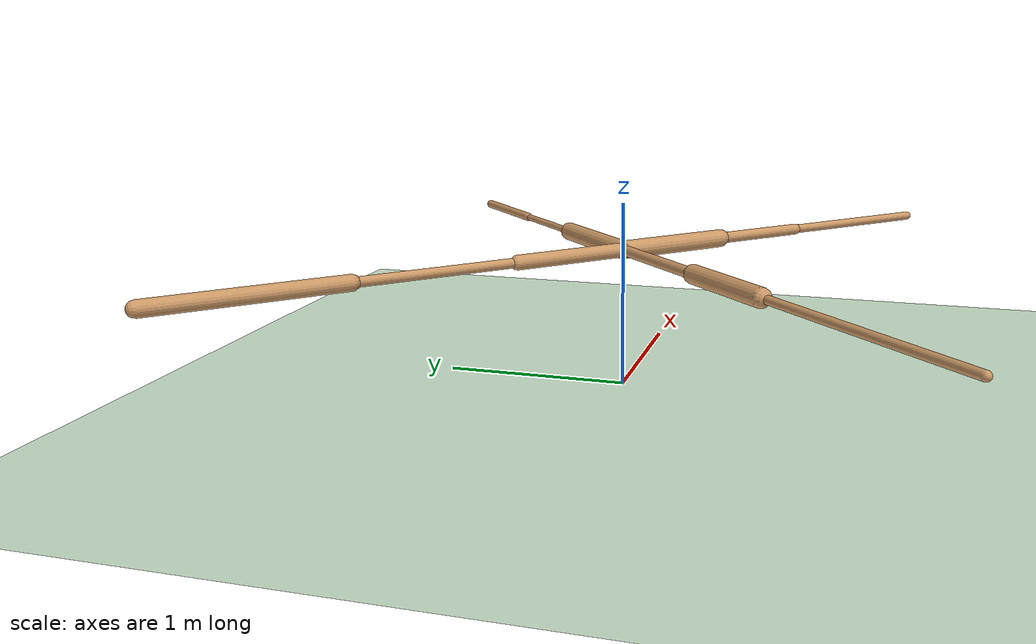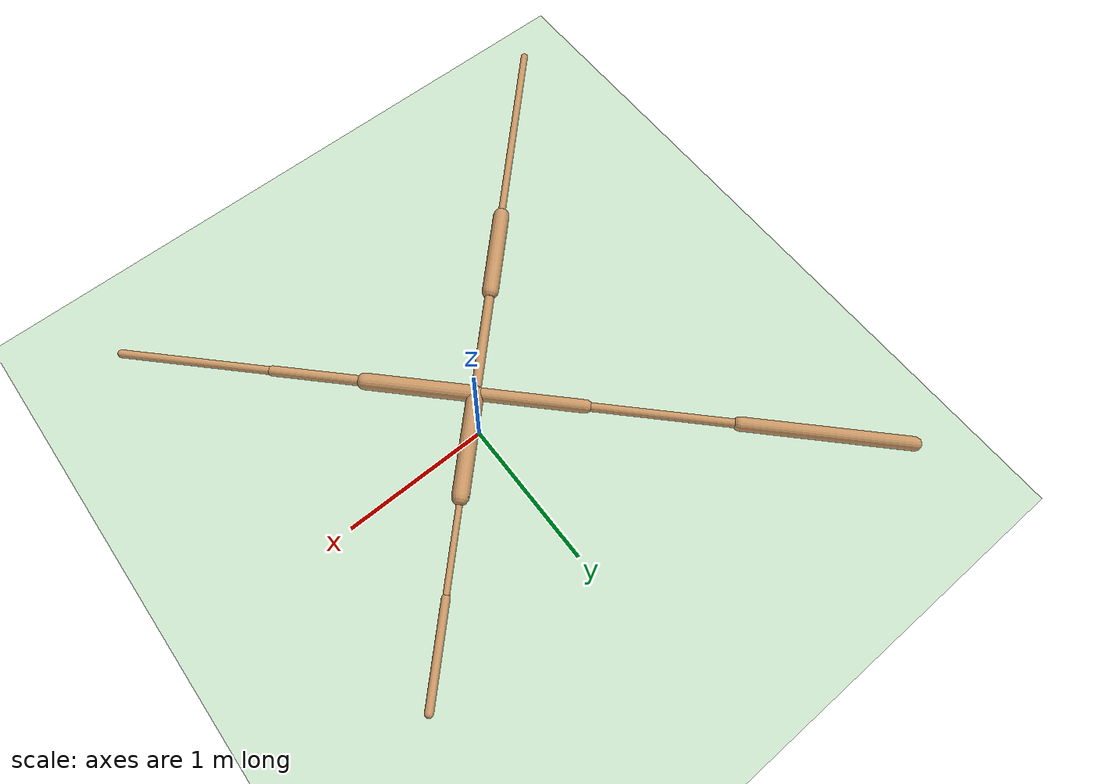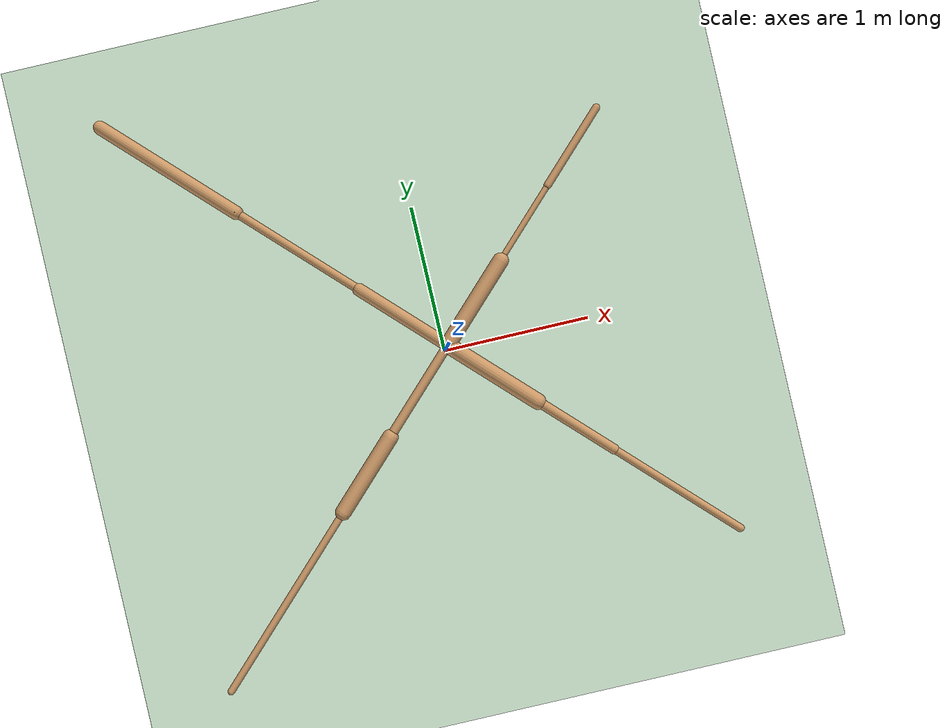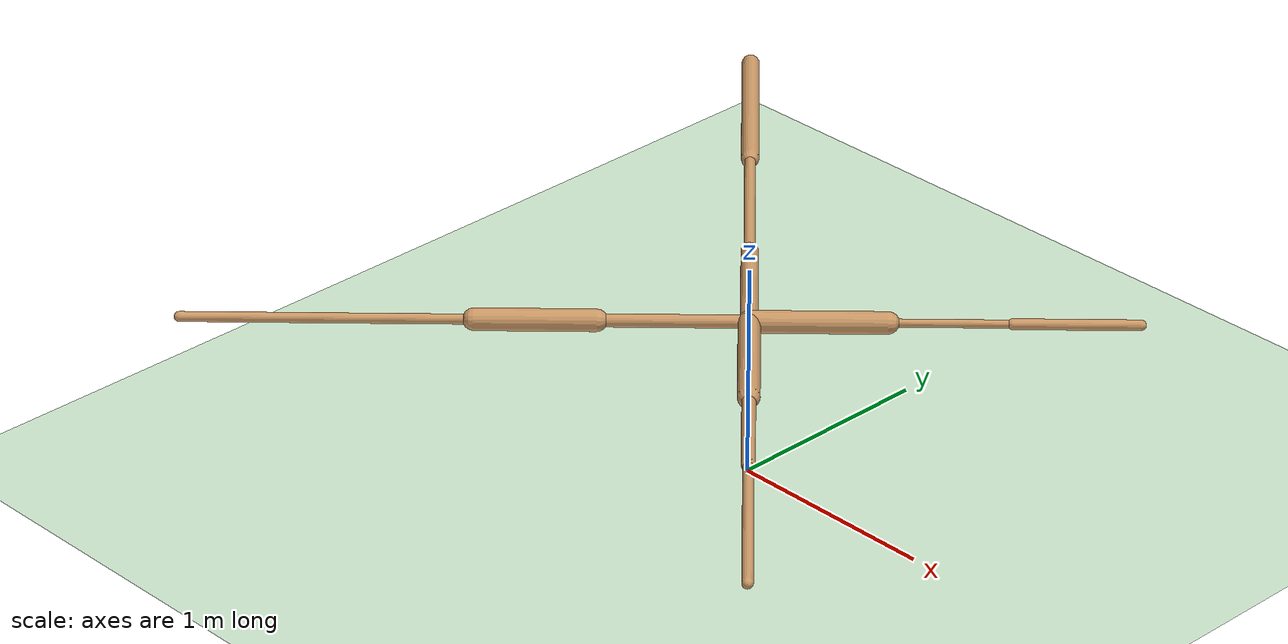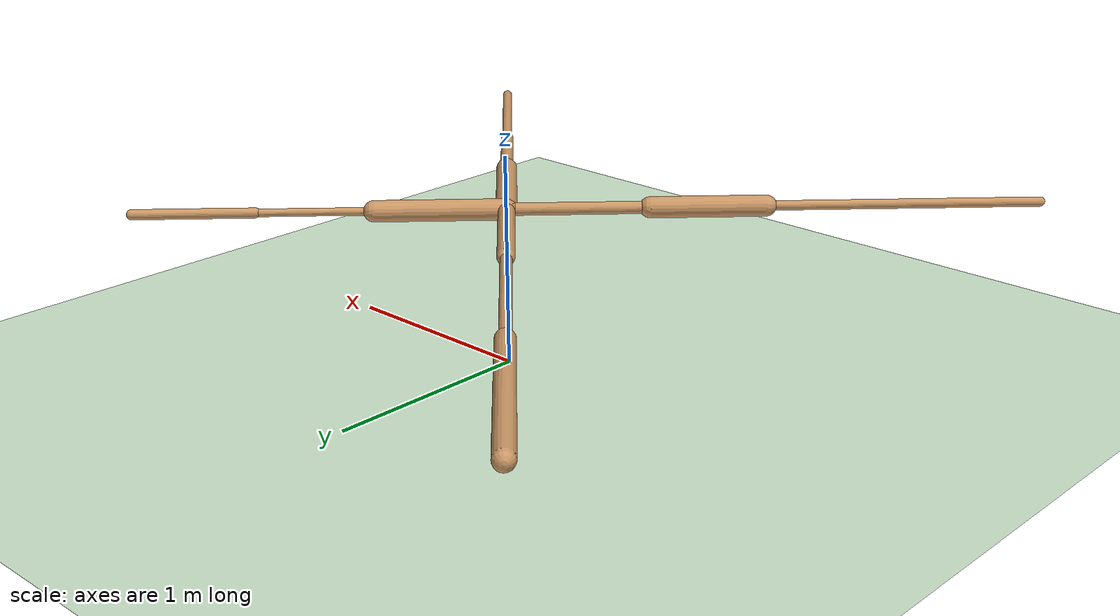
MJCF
<mujoco model="ant">
  <compiler angle="degree" coordinate="local" inertiafromgeom="true" />
  <option integrator="RK4" timestep="0.01" />
  <custom>
    <numeric data="0.0 0.0 0.55 1.0 0.0 0.0 0.0 0.0 1.0 0.0 -1.0 0.0 -1.0 0.0 1.0" name="init_qpos" />
  </custom>
  <default>
    <joint armature="1" damping="1" limited="true" />
    <geom conaffinity="0" condim="3" density="5.0" friction="1 0.5 0.5" margin="0.01" rgba="0.8 0.6 0.4 1" />
  </default>
  <asset>
    <texture builtin="gradient" height="100" rgb1="1 1 1" rgb2="0 0 0" type="skybox" width="100" />
    <texture builtin="flat" height="1278" mark="cross" markrgb="1 1 1" name="texgeom" random="0.01" rgb1="0.8 0.6 0.4" rgb2="0.8 0.6 0.4" type="cube" width="127" />
    <texture builtin="checker" height="100" name="texplane" rgb1="0 0 0" rgb2="0.8 0.8 0.8" type="2d" width="100" />
    <material name="MatPlane" reflectance="0.5" shininess="1" specular="1" texrepeat="60 60" texture="texplane" />
    <material name="geom" texture="texgeom" texuniform="true" />
  </asset>
  <worldbody>
    <light cutoff="100" diffuse="1 1 1" dir="-0 0 -1.3" directional="true" exponent="1" pos="0 0 1.3" specular=".1 .1 .1" />
    <geom conaffinity="1" condim="3" material="MatPlane" name="floor" pos="0 0 0" rgba="0.8 0.9 0.8 1" size="40 40 40" type="plane" />
    <body name="torso" pos="0 0 0.75">
      <camera name="track" mode="trackcom" pos="0 -11 5" xyaxes="1 0 0 0 0.5 1" />
      <geom name="torso_geom" pos="0 0 0" size="0.01445433497428894" type="sphere" />
      <joint armature="0" damping="0" limited="false" margin="0.01" name="root" pos="0 0 0" type="free" />
      <body name="front_left_leg" pos="0 0 0">
        <geom fromto="0 0 0 0.4211913049221039 0.4211913049221039 0" name="aux_1_geom" size="0.0497514009475708" type="capsule" />
        <body name="aux_1" pos="0.4211913049221039 0.4211913049221039 0">
          <joint axis="0 0 1" name="hip_1" pos="0.0 0.0 0.0" range="-30 30" type="hinge" />
          <geom fromto="0 0 0 0.3764364421367645 0.3764364421367645 0" name="left_leg_geom" size="0.018316663801670074" type="capsule" />
          <body name="left_leg_geom_aux" pos="0.3764364421367645 0.3764364421367645 0">
            <joint axis="-1 1 0" name="ankle_1" pos="0.0 0.0 0.0" range="30 70" type="hinge" />
            <geom fromto="0 0 0 0.3892785906791687 0.3892785906791687 0" name="left_ankle_geom" size="0.02396688237786293" type="capsule" />
          </body>
        </body>
      </body>
      <body name="front_right_leg" pos="0 0 0">
        <geom fromto="0 0 0 -0.4445176422595978 0.4445176422595978 0" name="aux_2_geom" size="0.03916506841778755" type="capsule" />
        <body name="aux_2" pos="-0.4445176422595978 0.4445176422595978 0">
          <joint axis="0 0 1" name="hip_2" pos="0.0 0.0 0.0" range="-30 30" type="hinge" />
          <geom fromto="0 0 0 -0.6141833662986755 0.6141833662986755 0" name="right_leg_geom" size="0.025945762172341347" type="capsule" />
          <body name="right_leg_geom_aux" pos="-0.6141833662986755 0.6141833662986755 0">
            <joint axis="1 1 0" name="ankle_2" pos="0.0 0.0 0.0" range="-70 -30" type="hinge" />
            <geom fromto="0 0 0 -0.6791853904724121 0.6791853904724121 0" name="right_ankle_geom" size="0.04169666767120361" type="capsule" />
          </body>
        </body>
      </body>
      <body name="back_leg" pos="0 0 0">
        <geom fromto="0 0 0 -0.46209287643432617 -0.46209287643432617 0" name="aux_3_geom" size="0.029023507609963417" type="capsule" />
        <body name="aux_3" pos="-0.46209287643432617 -0.46209287643432617 0">
          <joint axis="0 0 1" name="hip_3" pos="0.0 0.0 0.0" range="-30 30" type="hinge" />
          <geom fromto="0 0 0 -0.3737541139125824 -0.3737541139125824 0" name="back_leg_geom" size="0.04955724626779556" type="capsule" />
          <body name="back_leg_geom_aux" pos="-0.3737541139125824 -0.3737541139125824 0">
            <joint axis="-1 1 0" name="ankle_3" pos="0.0 0.0 0.0" range="-70 -30" type="hinge" />
            <geom fromto="0 0 0 -0.8955537676811218 -0.8955537676811218 0" name="third_ankle_geom" size="0.022396931424736977" type="capsule" />
          </body>
        </body>
      </body>
      <body name="right_back_leg" pos="0 0 0">
        <geom fromto="0 0 0 0.4505760371685028 -0.4505760371685028 0" name="aux_4_geom" size="0.049178969115018845" type="capsule" />
        <body name="aux_4" pos="0.4505760371685028 -0.4505760371685028 0">
          <joint axis="0 0 1" name="hip_4" pos="0.0 0.0 0.0" range="-30 30" type="hinge" />
          <geom fromto="0 0 0 0.3818943202495575 -0.3818943202495575 0" name="rightback_leg_geom" size="0.030372485518455505" type="capsule" />
          <body name="rightback_leg_geom_aux" pos="0.3818943202495575 -0.3818943202495575 0">
            <joint axis="1 1 0" name="ankle_4" pos="0.0 0.0 0.0" range="30 70" type="hinge" />
            <geom fromto="0 0 0 0.6307424306869507 -0.6307424306869507 0" name="fourth_ankle_geom" size="0.024103503674268723" type="capsule" />
          </body>
        </body>
      </body>
    </body>
  </worldbody>
  <actuator>
    <motor ctrllimited="true" ctrlrange="-1.0 1.0" joint="hip_4" gear="150" />
    <motor ctrllimited="true" ctrlrange="-1.0 1.0" joint="ankle_4" gear="150" />
    <motor ctrllimited="true" ctrlrange="-1.0 1.0" joint="hip_1" gear="150" />
    <motor ctrllimited="true" ctrlrange="-1.0 1.0" joint="ankle_1" gear="150" />
    <motor ctrllimited="true" ctrlrange="-1.0 1.0" joint="hip_2" gear="150" />
    <motor ctrllimited="true" ctrlrange="-1.0 1.0" joint="ankle_2" gear="150" />
    <motor ctrllimited="true" ctrlrange="-1.0 1.0" joint="hip_3" gear="150" />
    <motor ctrllimited="true" ctrlrange="-1.0 1.0" joint="ankle_3" gear="150" />
  </actuator>
</mujoco>
